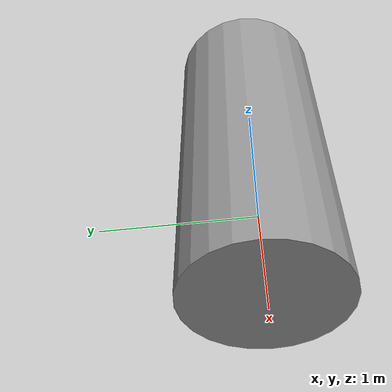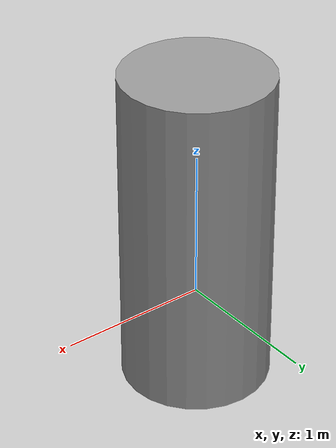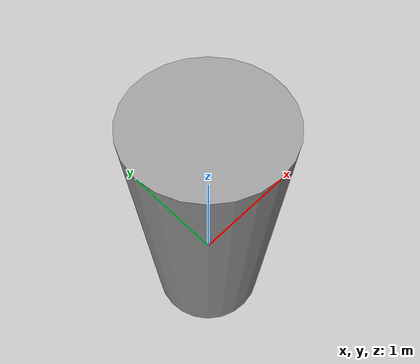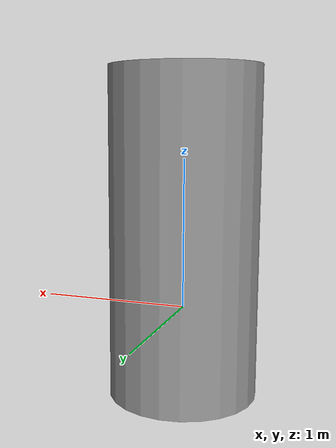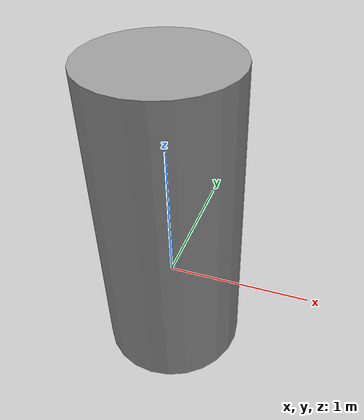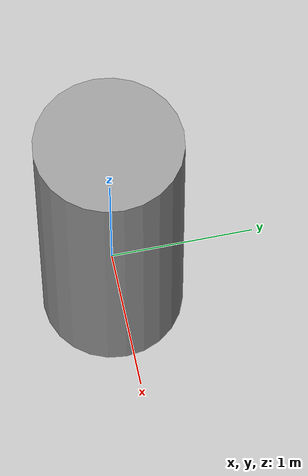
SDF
<?xml version='1.0'?>
<sdf version='1.7'>
    <model name='tree_type_short'>
        <pose>0 0 0.5 0 -0 0</pose>
        <link name='link'>
            <inertial>
                <mass>1</mass>
                <inertia>
                    <ixx>0.465833</ixx>
                    <ixy>0</ixy>
                    <ixz>0</ixz>
                    <iyy>0.465833</iyy>
                    <iyz>0</iyz>
                    <izz>0.125</izz>
                </inertia>
                <pose>0 0 0 0 -0 0</pose>
            </inertial>
            <collision name='collision'>
                <geometry>
                    <cylinder>
                        <radius>0.5</radius>
                        <length>2.2</length>
                    </cylinder>
                </geometry>
                <max_contacts>10</max_contacts>
            </collision>
            <visual name='visual'>
                <geometry>
                    <cylinder>
                        <radius>0.5</radius>
                        <length>2.2</length>
                    </cylinder>
                </geometry>
                <material>
                    <script>
                        <name>Gazebo/Grey</name>
                        <uri>file://media/materials/scripts/gazebo.material</uri>
                    </script>
                </material>
            </visual>
            <self_collide>0</self_collide>
            <enable_wind>0</enable_wind>
            <kinematic>0</kinematic>
        </link>
    </model>
</sdf>
